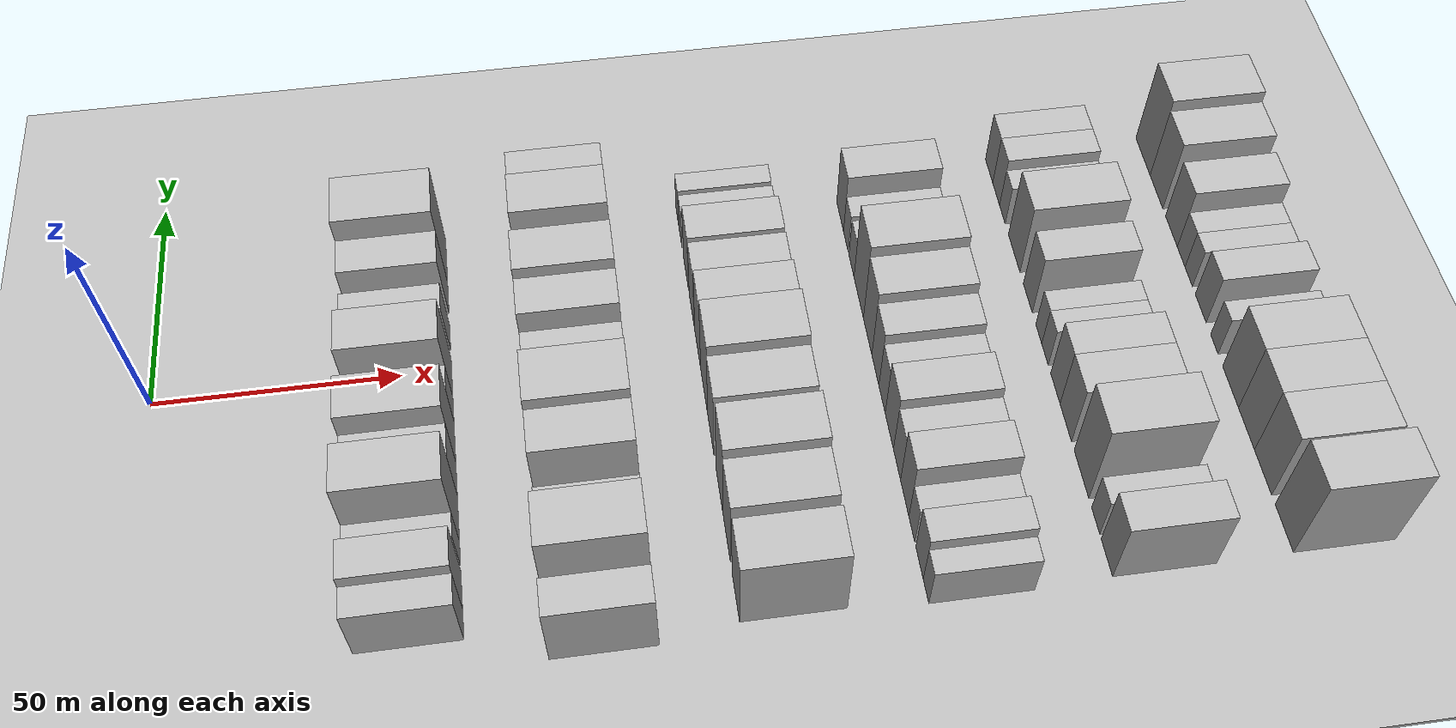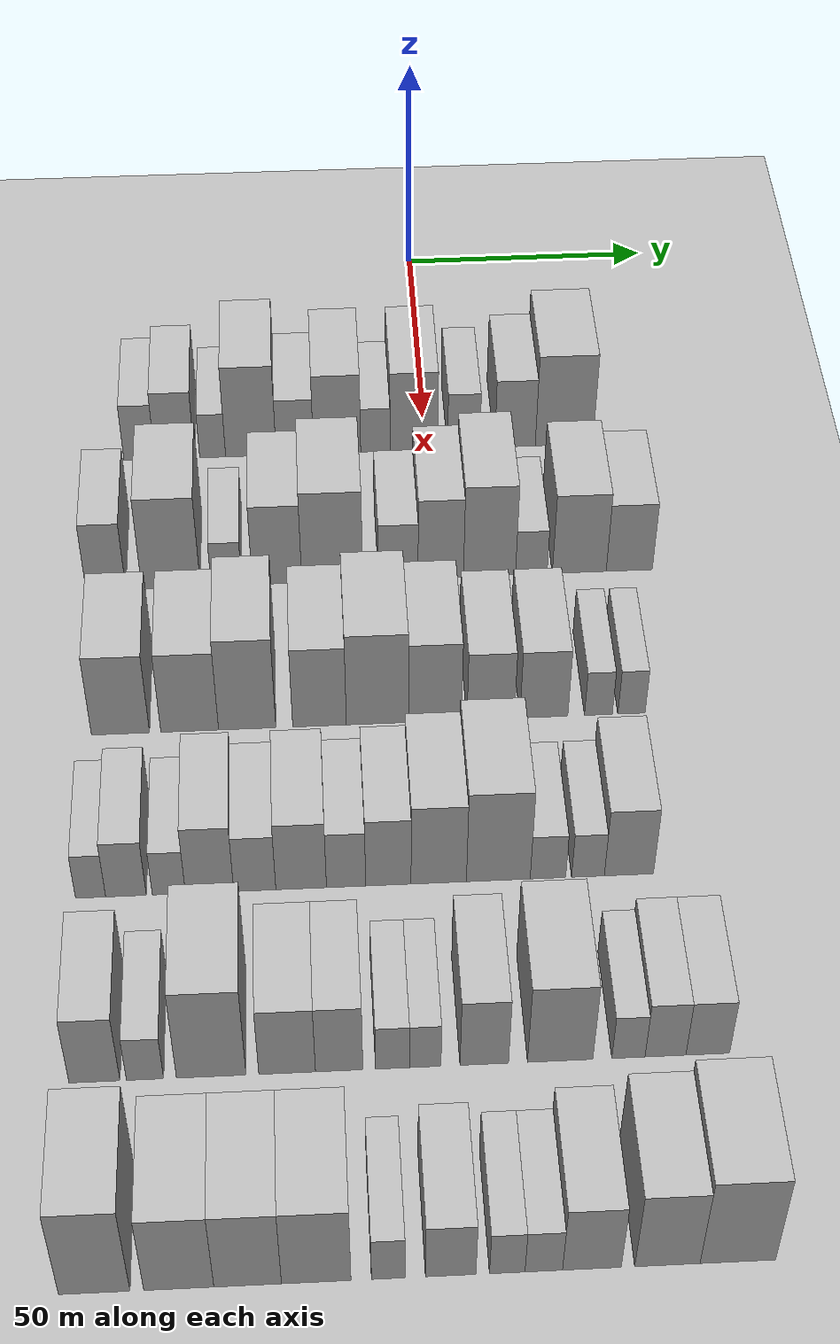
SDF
<sdf version="1.6">
 <world name="default">
  <include><name>ground_plane_1</name><uri>model://HANNAS_ground_plane</uri></include>
  <include>
   <name>ground_plane_2</name>
   <uri>model://HANNAS_ground_plane</uri>
   <pose>100 0 0  0 0 0</pose>
  </include>
  <model name="building_57">
   <static>1</static>
   <pose>50.0000 -56.8414 0 0.000000 0.000000 0.000000</pose>
   <link name="link">
    <pose>0 0 7.50 0 0 0</pose>
    <collision name="collision"><geometry><box><size>20.0000 6.1322 15.0000</size></box></geometry></collision>
    <visual name="visual">
     <cast_shadows>0</cast_shadows>
     <geometry><box><size>20.0000 6.1322 15.0000</size></box></geometry>
     <material>
      <script>
       <uri>model://HANNAS_wall/materials/scripts</uri>
       <uri>model://HANNAS_wall/materials/textures</uri>
       <name>vrc/HANNAS_wall</name>
      </script>
     </material>
    </visual>
   </link>
  </model>
  <model name="building_58">
   <static>1</static>
   <pose>50.0000 -49.8382 0 0.000000 0.000000 0.000000</pose>
   <link name="link">
    <pose>0 0 9.00 0 0 0</pose>
    <collision name="collision"><geometry><box><size>20.0000 7.8742 18.0000</size></box></geometry></collision>
    <visual name="visual">
     <cast_shadows>0</cast_shadows>
     <geometry><box><size>20.0000 7.8742 18.0000</size></box></geometry>
     <material>
      <script>
       <uri>model://HANNAS_wall/materials/scripts</uri>
       <uri>model://HANNAS_wall/materials/textures</uri>
       <name>vrc/HANNAS_wall</name>
      </script>
     </material>
    </visual>
   </link>
  </model>
  <model name="building_59">
   <static>1</static>
   <pose>50.0000 -42.3249 0 0.000000 0.000000 0.000000</pose>
   <link name="link">
    <pose>0 0 6.00 0 0 0</pose>
    <collision name="collision"><geometry><box><size>20.0000 5.1525 12.0000</size></box></geometry></collision>
    <visual name="visual">
     <cast_shadows>0</cast_shadows>
     <geometry><box><size>20.0000 5.1525 12.0000</size></box></geometry>
     <material>
      <script>
       <uri>model://HANNAS_wall/materials/scripts</uri>
       <uri>model://HANNAS_wall/materials/textures</uri>
       <name>vrc/HANNAS_wall</name>
      </script>
     </material>
    </visual>
   </link>
  </model>
  <model name="building_60">
   <static>1</static>
   <pose>50.0000 -34.7320 0 0.000000 0.000000 0.000000</pose>
   <link name="link">
    <pose>0 0 12.00 0 0 0</pose>
    <collision name="collision"><geometry><box><size>20.0000 10.0334 24.0000</size></box></geometry></collision>
    <visual name="visual">
     <cast_shadows>0</cast_shadows>
     <geometry><box><size>20.0000 10.0334 24.0000</size></box></geometry>
     <material>
      <script>
       <uri>model://HANNAS_wall/materials/scripts</uri>
       <uri>model://HANNAS_wall/materials/textures</uri>
       <name>vrc/HANNAS_wall</name>
      </script>
     </material>
    </visual>
   </link>
  </model>
  <model name="building_61">
   <static>1</static>
   <pose>50.0000 -26.0058 0 0.000000 0.000000 0.000000</pose>
   <link name="link">
    <pose>0 0 7.50 0 0 0</pose>
    <collision name="collision"><geometry><box><size>20.0000 7.4190 15.0000</size></box></geometry></collision>
    <visual name="visual">
     <cast_shadows>0</cast_shadows>
     <geometry><box><size>20.0000 7.4190 15.0000</size></box></geometry>
     <material>
      <script>
       <uri>model://HANNAS_wall/materials/scripts</uri>
       <uri>model://HANNAS_wall/materials/textures</uri>
       <name>vrc/HANNAS_wall</name>
      </script>
     </material>
    </visual>
   </link>
  </model>
  <model name="building_62">
   <static>1</static>
   <pose>50.0000 -17.5947 0 0.000000 0.000000 0.000000</pose>
   <link name="link">
    <pose>0 0 10.50 0 0 0</pose>
    <collision name="collision"><geometry><box><size>20.0000 9.4032 21.0000</size></box></geometry></collision>
    <visual name="visual">
     <cast_shadows>0</cast_shadows>
     <geometry><box><size>20.0000 9.4032 21.0000</size></box></geometry>
     <material>
      <script>
       <uri>model://HANNAS_wall/materials/scripts</uri>
       <uri>model://HANNAS_wall/materials/textures</uri>
       <name>vrc/HANNAS_wall</name>
      </script>
     </material>
    </visual>
   </link>
  </model>
  <model name="building_63">
   <static>1</static>
   <pose>50.0000 -9.9566 0 0.000000 0.000000 0.000000</pose>
   <link name="link">
    <pose>0 0 6.00 0 0 0</pose>
    <collision name="collision"><geometry><box><size>20.0000 5.8728 12.0000</size></box></geometry></collision>
    <visual name="visual">
     <cast_shadows>0</cast_shadows>
     <geometry><box><size>20.0000 5.8728 12.0000</size></box></geometry>
     <material>
      <script>
       <uri>model://HANNAS_wall/materials/scripts</uri>
       <uri>model://HANNAS_wall/materials/textures</uri>
       <name>vrc/HANNAS_wall</name>
      </script>
     </material>
    </visual>
   </link>
  </model>
  <model name="building_64">
   <static>1</static>
   <pose>50.0000 -2.2937 0 0.000000 0.000000 0.000000</pose>
   <link name="link">
    <pose>0 0 10.50 0 0 0</pose>
    <collision name="collision"><geometry><box><size>20.0000 9.4531 21.0000</size></box></geometry></collision>
    <visual name="visual">
     <cast_shadows>0</cast_shadows>
     <geometry><box><size>20.0000 9.4531 21.0000</size></box></geometry>
     <material>
      <script>
       <uri>model://HANNAS_wall/materials/scripts</uri>
       <uri>model://HANNAS_wall/materials/textures</uri>
       <name>vrc/HANNAS_wall</name>
      </script>
     </material>
    </visual>
   </link>
  </model>
  <model name="building_65">
   <static>1</static>
   <pose>50.0000 7.6497 0 0.000000 0.000000 0.000000</pose>
   <link name="link">
    <pose>0 0 7.50 0 0 0</pose>
    <collision name="collision"><geometry><box><size>20.0000 6.4336 15.0000</size></box></geometry></collision>
    <visual name="visual">
     <cast_shadows>0</cast_shadows>
     <geometry><box><size>20.0000 6.4336 15.0000</size></box></geometry>
     <material>
      <script>
       <uri>model://HANNAS_wall/materials/scripts</uri>
       <uri>model://HANNAS_wall/materials/textures</uri>
       <name>vrc/HANNAS_wall</name>
      </script>
     </material>
    </visual>
   </link>
  </model>
  <model name="building_66">
   <static>1</static>
   <pose>50.0000 17.9216 0 0.000000 0.000000 0.000000</pose>
   <link name="link">
    <pose>0 0 9.00 0 0 0</pose>
    <collision name="collision"><geometry><box><size>20.0000 8.1102 18.0000</size></box></geometry></collision>
    <visual name="visual">
     <cast_shadows>0</cast_shadows>
     <geometry><box><size>20.0000 8.1102 18.0000</size></box></geometry>
     <material>
      <script>
       <uri>model://HANNAS_wall/materials/scripts</uri>
       <uri>model://HANNAS_wall/materials/textures</uri>
       <name>vrc/HANNAS_wall</name>
      </script>
     </material>
    </visual>
   </link>
  </model>
  <model name="building_67">
   <static>1</static>
   <pose>50.0000 27.7490 0 0.000000 0.000000 0.000000</pose>
   <link name="link">
    <pose>0 0 12.00 0 0 0</pose>
    <collision name="collision"><geometry><box><size>20.0000 11.5447 24.0000</size></box></geometry></collision>
    <visual name="visual">
     <cast_shadows>0</cast_shadows>
     <geometry><box><size>20.0000 11.5447 24.0000</size></box></geometry>
     <material>
      <script>
       <uri>model://HANNAS_wall/materials/scripts</uri>
       <uri>model://HANNAS_wall/materials/textures</uri>
       <name>vrc/HANNAS_wall</name>
      </script>
     </material>
    </visual>
   </link>
  </model>
  <model name="building_186">
   <static>1</static>
   <pose>85.0000 -62.1370 0 0.000000 0.000000 0.000000</pose>
   <link name="link">
    <pose>0 0 9.00 0 0 0</pose>
    <collision name="collision"><geometry><box><size>20.0000 7.4513 18.0000</size></box></geometry></collision>
    <visual name="visual">
     <cast_shadows>0</cast_shadows>
     <geometry><box><size>20.0000 7.4513 18.0000</size></box></geometry>
     <material>
      <script>
       <uri>model://HANNAS_wall/materials/scripts</uri>
       <uri>model://HANNAS_wall/materials/textures</uri>
       <name>vrc/HANNAS_wall</name>
      </script>
     </material>
    </visual>
   </link>
  </model>
  <model name="building_187">
   <static>1</static>
   <pose>85.0000 -49.9048 0 0.000000 0.000000 0.000000</pose>
   <link name="link">
    <pose>0 0 12.00 0 0 0</pose>
    <collision name="collision"><geometry><box><size>20.0000 11.0131 24.0000</size></box></geometry></collision>
    <visual name="visual">
     <cast_shadows>0</cast_shadows>
     <geometry><box><size>20.0000 11.0131 24.0000</size></box></geometry>
     <material>
      <script>
       <uri>model://HANNAS_wall/materials/scripts</uri>
       <uri>model://HANNAS_wall/materials/textures</uri>
       <name>vrc/HANNAS_wall</name>
      </script>
     </material>
    </visual>
   </link>
  </model>
  <model name="building_188">
   <static>1</static>
   <pose>85.0000 -39.5182 0 0.000000 0.000000 0.000000</pose>
   <link name="link">
    <pose>0 0 6.00 0 0 0</pose>
    <collision name="collision"><geometry><box><size>20.0000 5.7602 12.0000</size></box></geometry></collision>
    <visual name="visual">
     <cast_shadows>0</cast_shadows>
     <geometry><box><size>20.0000 5.7602 12.0000</size></box></geometry>
     <material>
      <script>
       <uri>model://HANNAS_wall/materials/scripts</uri>
       <uri>model://HANNAS_wall/materials/textures</uri>
       <name>vrc/HANNAS_wall</name>
      </script>
     </material>
    </visual>
   </link>
  </model>
  <model name="building_189">
   <static>1</static>
   <pose>85.0000 -29.9861 0 0.000000 0.000000 0.000000</pose>
   <link name="link">
    <pose>0 0 10.50 0 0 0</pose>
    <collision name="collision"><geometry><box><size>20.0000 9.3040 21.0000</size></box></geometry></collision>
    <visual name="visual">
     <cast_shadows>0</cast_shadows>
     <geometry><box><size>20.0000 9.3040 21.0000</size></box></geometry>
     <material>
      <script>
       <uri>model://HANNAS_wall/materials/scripts</uri>
       <uri>model://HANNAS_wall/materials/textures</uri>
       <name>vrc/HANNAS_wall</name>
      </script>
     </material>
    </visual>
   </link>
  </model>
  <model name="building_190">
   <static>1</static>
   <pose>85.0000 -19.5991 0 0.000000 0.000000 0.000000</pose>
   <link name="link">
    <pose>0 0 12.00 0 0 0</pose>
    <collision name="collision"><geometry><box><size>20.0000 11.4700 24.0000</size></box></geometry></collision>
    <visual name="visual">
     <cast_shadows>0</cast_shadows>
     <geometry><box><size>20.0000 11.4700 24.0000</size></box></geometry>
     <material>
      <script>
       <uri>model://HANNAS_wall/materials/scripts</uri>
       <uri>model://HANNAS_wall/materials/textures</uri>
       <name>vrc/HANNAS_wall</name>
      </script>
     </material>
    </visual>
   </link>
  </model>
  <model name="building_191">
   <static>1</static>
   <pose>85.0000 -7.1360 0 0.000000 0.000000 0.000000</pose>
   <link name="link">
    <pose>0 0 7.50 0 0 0</pose>
    <collision name="collision"><geometry><box><size>20.0000 7.4561 15.0000</size></box></geometry></collision>
    <visual name="visual">
     <cast_shadows>0</cast_shadows>
     <geometry><box><size>20.0000 7.4561 15.0000</size></box></geometry>
     <material>
      <script>
       <uri>model://HANNAS_wall/materials/scripts</uri>
       <uri>model://HANNAS_wall/materials/textures</uri>
       <name>vrc/HANNAS_wall</name>
      </script>
     </material>
    </visual>
   </link>
  </model>
  <model name="building_192">
   <static>1</static>
   <pose>85.0000 0.8854 0 0.000000 0.000000 0.000000</pose>
   <link name="link">
    <pose>0 0 10.50 0 0 0</pose>
    <collision name="collision"><geometry><box><size>20.0000 8.5868 21.0000</size></box></geometry></collision>
    <visual name="visual">
     <cast_shadows>0</cast_shadows>
     <geometry><box><size>20.0000 8.5868 21.0000</size></box></geometry>
     <material>
      <script>
       <uri>model://HANNAS_wall/materials/scripts</uri>
       <uri>model://HANNAS_wall/materials/textures</uri>
       <name>vrc/HANNAS_wall</name>
      </script>
     </material>
    </visual>
   </link>
  </model>
  <model name="building_193">
   <static>1</static>
   <pose>85.0000 10.1110 0 0.000000 0.000000 0.000000</pose>
   <link name="link">
    <pose>0 0 12.00 0 0 0</pose>
    <collision name="collision"><geometry><box><size>20.0000 9.8644 24.0000</size></box></geometry></collision>
    <visual name="visual">
     <cast_shadows>0</cast_shadows>
     <geometry><box><size>20.0000 9.8644 24.0000</size></box></geometry>
     <material>
      <script>
       <uri>model://HANNAS_wall/materials/scripts</uri>
       <uri>model://HANNAS_wall/materials/textures</uri>
       <name>vrc/HANNAS_wall</name>
      </script>
     </material>
    </visual>
   </link>
  </model>
  <model name="building_194">
   <static>1</static>
   <pose>85.0000 18.0427 0 0.000000 0.000000 0.000000</pose>
   <link name="link">
    <pose>0 0 6.00 0 0 0</pose>
    <collision name="collision"><geometry><box><size>20.0000 5.9991 12.0000</size></box></geometry></collision>
    <visual name="visual">
     <cast_shadows>0</cast_shadows>
     <geometry><box><size>20.0000 5.9991 12.0000</size></box></geometry>
     <material>
      <script>
       <uri>model://HANNAS_wall/materials/scripts</uri>
       <uri>model://HANNAS_wall/materials/textures</uri>
       <name>vrc/HANNAS_wall</name>
      </script>
     </material>
    </visual>
   </link>
  </model>
  <model name="building_195">
   <static>1</static>
   <pose>85.0000 27.1589 0 0.000000 0.000000 0.000000</pose>
   <link name="link">
    <pose>0 0 10.50 0 0 0</pose>
    <collision name="collision"><geometry><box><size>20.0000 10.2332 21.0000</size></box></geometry></collision>
    <visual name="visual">
     <cast_shadows>0</cast_shadows>
     <geometry><box><size>20.0000 10.2332 21.0000</size></box></geometry>
     <material>
      <script>
       <uri>model://HANNAS_wall/materials/scripts</uri>
       <uri>model://HANNAS_wall/materials/textures</uri>
       <name>vrc/HANNAS_wall</name>
      </script>
     </material>
    </visual>
   </link>
  </model>
  <model name="building_196">
   <static>1</static>
   <pose>85.0000 36.6626 0 0.000000 0.000000 0.000000</pose>
   <link name="link">
    <pose>0 0 9.00 0 0 0</pose>
    <collision name="collision"><geometry><box><size>20.0000 8.7741 18.0000</size></box></geometry></collision>
    <visual name="visual">
     <cast_shadows>0</cast_shadows>
     <geometry><box><size>20.0000 8.7741 18.0000</size></box></geometry>
     <material>
      <script>
       <uri>model://HANNAS_wall/materials/scripts</uri>
       <uri>model://HANNAS_wall/materials/textures</uri>
       <name>vrc/HANNAS_wall</name>
      </script>
     </material>
    </visual>
   </link>
  </model>
  <model name="building_314">
   <static>1</static>
   <pose>120.0000 -58.2057 0 0.000000 0.000000 0.000000</pose>
   <link name="link">
    <pose>0 0 10.50 0 0 0</pose>
    <collision name="collision"><geometry><box><size>20.0000 10.2750 21.0000</size></box></geometry></collision>
    <visual name="visual">
     <cast_shadows>0</cast_shadows>
     <geometry><box><size>20.0000 10.2750 21.0000</size></box></geometry>
     <material>
      <script>
       <uri>model://HANNAS_wall/materials/scripts</uri>
       <uri>model://HANNAS_wall/materials/textures</uri>
       <name>vrc/HANNAS_wall</name>
      </script>
     </material>
    </visual>
   </link>
  </model>
  <model name="building_315">
   <static>1</static>
   <pose>120.0000 -45.9486 0 0.000000 0.000000 0.000000</pose>
   <link name="link">
    <pose>0 0 10.50 0 0 0</pose>
    <collision name="collision"><geometry><box><size>20.0000 10.2391 21.0000</size></box></geometry></collision>
    <visual name="visual">
     <cast_shadows>0</cast_shadows>
     <geometry><box><size>20.0000 10.2391 21.0000</size></box></geometry>
     <material>
      <script>
       <uri>model://HANNAS_wall/materials/scripts</uri>
       <uri>model://HANNAS_wall/materials/textures</uri>
       <name>vrc/HANNAS_wall</name>
      </script>
     </material>
    </visual>
   </link>
  </model>
  <model name="building_316">
   <static>1</static>
   <pose>120.0000 -35.7430 0 0.000000 0.000000 0.000000</pose>
   <link name="link">
    <pose>0 0 12.00 0 0 0</pose>
    <collision name="collision"><geometry><box><size>20.0000 10.1720 24.0000</size></box></geometry></collision>
    <visual name="visual">
     <cast_shadows>0</cast_shadows>
     <geometry><box><size>20.0000 10.1720 24.0000</size></box></geometry>
     <material>
      <script>
       <uri>model://HANNAS_wall/materials/scripts</uri>
       <uri>model://HANNAS_wall/materials/textures</uri>
       <name>vrc/HANNAS_wall</name>
      </script>
     </material>
    </visual>
   </link>
  </model>
  <model name="building_317">
   <static>1</static>
   <pose>120.0000 -22.8842 0 0.000000 0.000000 0.000000</pose>
   <link name="link">
    <pose>0 0 10.50 0 0 0</pose>
    <collision name="collision"><geometry><box><size>20.0000 9.5457 21.0000</size></box></geometry></collision>
    <visual name="visual">
     <cast_shadows>0</cast_shadows>
     <geometry><box><size>20.0000 9.5457 21.0000</size></box></geometry>
     <material>
      <script>
       <uri>model://HANNAS_wall/materials/scripts</uri>
       <uri>model://HANNAS_wall/materials/textures</uri>
       <name>vrc/HANNAS_wall</name>
      </script>
     </material>
    </visual>
   </link>
  </model>
  <model name="building_318">
   <static>1</static>
   <pose>120.0000 -12.5802 0 0.000000 0.000000 0.000000</pose>
   <link name="link">
    <pose>0 0 12.00 0 0 0</pose>
    <collision name="collision"><geometry><box><size>20.0000 11.0624 24.0000</size></box></geometry></collision>
    <visual name="visual">
     <cast_shadows>0</cast_shadows>
     <geometry><box><size>20.0000 11.0624 24.0000</size></box></geometry>
     <material>
      <script>
       <uri>model://HANNAS_wall/materials/scripts</uri>
       <uri>model://HANNAS_wall/materials/textures</uri>
       <name>vrc/HANNAS_wall</name>
      </script>
     </material>
    </visual>
   </link>
  </model>
  <model name="building_319">
   <static>1</static>
   <pose>120.0000 -2.3240 0 0.000000 0.000000 0.000000</pose>
   <link name="link">
    <pose>0 0 10.50 0 0 0</pose>
    <collision name="collision"><geometry><box><size>20.0000 9.4500 21.0000</size></box></geometry></collision>
    <visual name="visual">
     <cast_shadows>0</cast_shadows>
     <geometry><box><size>20.0000 9.4500 21.0000</size></box></geometry>
     <material>
      <script>
       <uri>model://HANNAS_wall/materials/scripts</uri>
       <uri>model://HANNAS_wall/materials/textures</uri>
       <name>vrc/HANNAS_wall</name>
      </script>
     </material>
    </visual>
   </link>
  </model>
  <model name="building_320">
   <static>1</static>
   <pose>120.0000 7.6342 0 0.000000 0.000000 0.000000</pose>
   <link name="link">
    <pose>0 0 9.00 0 0 0</pose>
    <collision name="collision"><geometry><box><size>20.0000 8.4664 18.0000</size></box></geometry></collision>
    <visual name="visual">
     <cast_shadows>0</cast_shadows>
     <geometry><box><size>20.0000 8.4664 18.0000</size></box></geometry>
     <material>
      <script>
       <uri>model://HANNAS_wall/materials/scripts</uri>
       <uri>model://HANNAS_wall/materials/textures</uri>
       <name>vrc/HANNAS_wall</name>
      </script>
     </material>
    </visual>
   </link>
  </model>
  <model name="building_321">
   <static>1</static>
   <pose>120.0000 17.1572 0 0.000000 0.000000 0.000000</pose>
   <link name="link">
    <pose>0 0 9.00 0 0 0</pose>
    <collision name="collision"><geometry><box><size>20.0000 8.5796 18.0000</size></box></geometry></collision>
    <visual name="visual">
     <cast_shadows>0</cast_shadows>
     <geometry><box><size>20.0000 8.5796 18.0000</size></box></geometry>
     <material>
      <script>
       <uri>model://HANNAS_wall/materials/scripts</uri>
       <uri>model://HANNAS_wall/materials/textures</uri>
       <name>vrc/HANNAS_wall</name>
      </script>
     </material>
    </visual>
   </link>
  </model>
  <model name="building_322">
   <static>1</static>
   <pose>120.0000 26.9430 0 0.000000 0.000000 0.000000</pose>
   <link name="link">
    <pose>0 0 6.00 0 0 0</pose>
    <collision name="collision"><geometry><box><size>20.0000 4.9921 12.0000</size></box></geometry></collision>
    <visual name="visual">
     <cast_shadows>0</cast_shadows>
     <geometry><box><size>20.0000 4.9921 12.0000</size></box></geometry>
     <material>
      <script>
       <uri>model://HANNAS_wall/materials/scripts</uri>
       <uri>model://HANNAS_wall/materials/textures</uri>
       <name>vrc/HANNAS_wall</name>
      </script>
     </material>
    </visual>
   </link>
  </model>
  <model name="building_323">
   <static>1</static>
   <pose>120.0000 32.8823 0 0.000000 0.000000 0.000000</pose>
   <link name="link">
    <pose>0 0 6.00 0 0 0</pose>
    <collision name="collision"><geometry><box><size>20.0000 4.8865 12.0000</size></box></geometry></collision>
    <visual name="visual">
     <cast_shadows>0</cast_shadows>
     <geometry><box><size>20.0000 4.8865 12.0000</size></box></geometry>
     <material>
      <script>
       <uri>model://HANNAS_wall/materials/scripts</uri>
       <uri>model://HANNAS_wall/materials/textures</uri>
       <name>vrc/HANNAS_wall</name>
      </script>
     </material>
    </visual>
   </link>
  </model>
  <model name="building_441">
   <static>1</static>
   <pose>155.0000 -61.9815 0 0.000000 0.000000 0.000000</pose>
   <link name="link">
    <pose>0 0 6.00 0 0 0</pose>
    <collision name="collision"><geometry><box><size>20.0000 5.0101 12.0000</size></box></geometry></collision>
    <visual name="visual">
     <cast_shadows>0</cast_shadows>
     <geometry><box><size>20.0000 5.0101 12.0000</size></box></geometry>
     <material>
      <script>
       <uri>model://HANNAS_wall/materials/scripts</uri>
       <uri>model://HANNAS_wall/materials/textures</uri>
       <name>vrc/HANNAS_wall</name>
      </script>
     </material>
    </visual>
   </link>
  </model>
  <model name="building_442">
   <static>1</static>
   <pose>155.0000 -56.0920 0 0.000000 0.000000 0.000000</pose>
   <link name="link">
    <pose>0 0 7.50 0 0 0</pose>
    <collision name="collision"><geometry><box><size>20.0000 6.7689 15.0000</size></box></geometry></collision>
    <visual name="visual">
     <cast_shadows>0</cast_shadows>
     <geometry><box><size>20.0000 6.7689 15.0000</size></box></geometry>
     <material>
      <script>
       <uri>model://HANNAS_wall/materials/scripts</uri>
       <uri>model://HANNAS_wall/materials/textures</uri>
       <name>vrc/HANNAS_wall</name>
      </script>
     </material>
    </visual>
   </link>
  </model>
  <model name="building_443">
   <static>1</static>
   <pose>155.0000 -48.9469 0 0.000000 0.000000 0.000000</pose>
   <link name="link">
    <pose>0 0 6.00 0 0 0</pose>
    <collision name="collision"><geometry><box><size>20.0000 5.5213 12.0000</size></box></geometry></collision>
    <visual name="visual">
     <cast_shadows>0</cast_shadows>
     <geometry><box><size>20.0000 5.5213 12.0000</size></box></geometry>
     <material>
      <script>
       <uri>model://HANNAS_wall/materials/scripts</uri>
       <uri>model://HANNAS_wall/materials/textures</uri>
       <name>vrc/HANNAS_wall</name>
      </script>
     </material>
    </visual>
   </link>
  </model>
  <model name="building_444">
   <static>1</static>
   <pose>155.0000 -42.1553 0 0.000000 0.000000 0.000000</pose>
   <link name="link">
    <pose>0 0 9.00 0 0 0</pose>
    <collision name="collision"><geometry><box><size>20.0000 8.0619 18.0000</size></box></geometry></collision>
    <visual name="visual">
     <cast_shadows>0</cast_shadows>
     <geometry><box><size>20.0000 8.0619 18.0000</size></box></geometry>
     <material>
      <script>
       <uri>model://HANNAS_wall/materials/scripts</uri>
       <uri>model://HANNAS_wall/materials/textures</uri>
       <name>vrc/HANNAS_wall</name>
      </script>
     </material>
    </visual>
   </link>
  </model>
  <model name="building_445">
   <static>1</static>
   <pose>155.0000 -34.6152 0 0.000000 0.000000 0.000000</pose>
   <link name="link">
    <pose>0 0 7.50 0 0 0</pose>
    <collision name="collision"><geometry><box><size>20.0000 7.0183 15.0000</size></box></geometry></collision>
    <visual name="visual">
     <cast_shadows>0</cast_shadows>
     <geometry><box><size>20.0000 7.0183 15.0000</size></box></geometry>
     <material>
      <script>
       <uri>model://HANNAS_wall/materials/scripts</uri>
       <uri>model://HANNAS_wall/materials/textures</uri>
       <name>vrc/HANNAS_wall</name>
      </script>
     </material>
    </visual>
   </link>
  </model>
  <model name="building_446">
   <static>1</static>
   <pose>155.0000 -26.8701 0 0.000000 0.000000 0.000000</pose>
   <link name="link">
    <pose>0 0 9.00 0 0 0</pose>
    <collision name="collision"><geometry><box><size>20.0000 8.4721 18.0000</size></box></geometry></collision>
    <visual name="visual">
     <cast_shadows>0</cast_shadows>
     <geometry><box><size>20.0000 8.4721 18.0000</size></box></geometry>
     <material>
      <script>
       <uri>model://HANNAS_wall/materials/scripts</uri>
       <uri>model://HANNAS_wall/materials/textures</uri>
       <name>vrc/HANNAS_wall</name>
      </script>
     </material>
    </visual>
   </link>
  </model>
  <model name="building_447">
   <static>1</static>
   <pose>155.0000 -19.3489 0 0.000000 0.000000 0.000000</pose>
   <link name="link">
    <pose>0 0 7.50 0 0 0</pose>
    <collision name="collision"><geometry><box><size>20.0000 6.5703 15.0000</size></box></geometry></collision>
    <visual name="visual">
     <cast_shadows>0</cast_shadows>
     <geometry><box><size>20.0000 6.5703 15.0000</size></box></geometry>
     <material>
      <script>
       <uri>model://HANNAS_wall/materials/scripts</uri>
       <uri>model://HANNAS_wall/materials/textures</uri>
       <name>vrc/HANNAS_wall</name>
      </script>
     </material>
    </visual>
   </link>
  </model>
  <model name="building_448">
   <static>1</static>
   <pose>155.0000 -12.2602 0 0.000000 0.000000 0.000000</pose>
   <link name="link">
    <pose>0 0 9.00 0 0 0</pose>
    <collision name="collision"><geometry><box><size>20.0000 7.6070 18.0000</size></box></geometry></collision>
    <visual name="visual">
     <cast_shadows>0</cast_shadows>
     <geometry><box><size>20.0000 7.6070 18.0000</size></box></geometry>
     <material>
      <script>
       <uri>model://HANNAS_wall/materials/scripts</uri>
       <uri>model://HANNAS_wall/materials/textures</uri>
       <name>vrc/HANNAS_wall</name>
      </script>
     </material>
    </visual>
   </link>
  </model>
  <model name="building_449">
   <static>1</static>
   <pose>155.0000 -3.8066 0 0.000000 0.000000 0.000000</pose>
   <link name="link">
    <pose>0 0 10.50 0 0 0</pose>
    <collision name="collision"><geometry><box><size>20.0000 9.3002 21.0000</size></box></geometry></collision>
    <visual name="visual">
     <cast_shadows>0</cast_shadows>
     <geometry><box><size>20.0000 9.3002 21.0000</size></box></geometry>
     <material>
      <script>
       <uri>model://HANNAS_wall/materials/scripts</uri>
       <uri>model://HANNAS_wall/materials/textures</uri>
       <name>vrc/HANNAS_wall</name>
      </script>
     </material>
    </visual>
   </link>
  </model>
  <model name="building_450">
   <static>1</static>
   <pose>155.0000 6.2107 0 0.000000 0.000000 0.000000</pose>
   <link name="link">
    <pose>0 0 12.00 0 0 0</pose>
    <collision name="collision"><geometry><box><size>20.0000 10.7344 24.0000</size></box></geometry></collision>
    <visual name="visual">
     <cast_shadows>0</cast_shadows>
     <geometry><box><size>20.0000 10.7344 24.0000</size></box></geometry>
     <material>
      <script>
       <uri>model://HANNAS_wall/materials/scripts</uri>
       <uri>model://HANNAS_wall/materials/textures</uri>
       <name>vrc/HANNAS_wall</name>
      </script>
     </material>
    </visual>
   </link>
  </model>
  <model name="building_451">
   <static>1</static>
   <pose>155.0000 14.5689 0 0.000000 0.000000 0.000000</pose>
   <link name="link">
    <pose>0 0 6.00 0 0 0</pose>
    <collision name="collision"><geometry><box><size>20.0000 5.9820 12.0000</size></box></geometry></collision>
    <visual name="visual">
     <cast_shadows>0</cast_shadows>
     <geometry><box><size>20.0000 5.9820 12.0000</size></box></geometry>
     <material>
      <script>
       <uri>model://HANNAS_wall/materials/scripts</uri>
       <uri>model://HANNAS_wall/materials/textures</uri>
       <name>vrc/HANNAS_wall</name>
      </script>
     </material>
    </visual>
   </link>
  </model>
  <model name="building_452">
   <static>1</static>
   <pose>155.0000 21.3207 0 0.000000 0.000000 0.000000</pose>
   <link name="link">
    <pose>0 0 6.00 0 0 0</pose>
    <collision name="collision"><geometry><box><size>20.0000 5.5216 12.0000</size></box></geometry></collision>
    <visual name="visual">
     <cast_shadows>0</cast_shadows>
     <geometry><box><size>20.0000 5.5216 12.0000</size></box></geometry>
     <material>
      <script>
       <uri>model://HANNAS_wall/materials/scripts</uri>
       <uri>model://HANNAS_wall/materials/textures</uri>
       <name>vrc/HANNAS_wall</name>
      </script>
     </material>
    </visual>
   </link>
  </model>
  <model name="building_453">
   <static>1</static>
   <pose>155.0000 28.2293 0 0.000000 0.000000 0.000000</pose>
   <link name="link">
    <pose>0 0 9.00 0 0 0</pose>
    <collision name="collision"><geometry><box><size>20.0000 8.2956 18.0000</size></box></geometry></collision>
    <visual name="visual">
     <cast_shadows>0</cast_shadows>
     <geometry><box><size>20.0000 8.2956 18.0000</size></box></geometry>
     <material>
      <script>
       <uri>model://HANNAS_wall/materials/scripts</uri>
       <uri>model://HANNAS_wall/materials/textures</uri>
       <name>vrc/HANNAS_wall</name>
      </script>
     </material>
    </visual>
   </link>
  </model>
  <model name="building_561">
   <static>1</static>
   <pose>190.0000 -59.8627 0 0.000000 0.000000 0.000000</pose>
   <link name="link">
    <pose>0 0 9.00 0 0 0</pose>
    <collision name="collision"><geometry><box><size>20.0000 7.9392 18.0000</size></box></geometry></collision>
    <visual name="visual">
     <cast_shadows>0</cast_shadows>
     <geometry><box><size>20.0000 7.9392 18.0000</size></box></geometry>
     <material>
      <script>
       <uri>model://HANNAS_wall/materials/scripts</uri>
       <uri>model://HANNAS_wall/materials/textures</uri>
       <name>vrc/HANNAS_wall</name>
      </script>
     </material>
    </visual>
   </link>
  </model>
  <model name="building_562">
   <static>1</static>
   <pose>190.0000 -51.9901 0 0.000000 0.000000 0.000000</pose>
   <link name="link">
    <pose>0 0 6.00 0 0 0</pose>
    <collision name="collision"><geometry><box><size>20.0000 5.8060 12.0000</size></box></geometry></collision>
    <visual name="visual">
     <cast_shadows>0</cast_shadows>
     <geometry><box><size>20.0000 5.8060 12.0000</size></box></geometry>
     <material>
      <script>
       <uri>model://HANNAS_wall/materials/scripts</uri>
       <uri>model://HANNAS_wall/materials/textures</uri>
       <name>vrc/HANNAS_wall</name>
      </script>
     </material>
    </visual>
   </link>
  </model>
  <model name="building_563">
   <static>1</static>
   <pose>190.0000 -41.6475 0 0.000000 0.000000 0.000000</pose>
   <link name="link">
    <pose>0 0 12.00 0 0 0</pose>
    <collision name="collision"><geometry><box><size>20.0000 10.8793 24.0000</size></box></geometry></collision>
    <visual name="visual">
     <cast_shadows>0</cast_shadows>
     <geometry><box><size>20.0000 10.8793 24.0000</size></box></geometry>
     <material>
      <script>
       <uri>model://HANNAS_wall/materials/scripts</uri>
       <uri>model://HANNAS_wall/materials/textures</uri>
       <name>vrc/HANNAS_wall</name>
      </script>
     </material>
    </visual>
   </link>
  </model>
  <model name="building_564">
   <static>1</static>
   <pose>190.0000 -29.7698 0 0.000000 0.000000 0.000000</pose>
   <link name="link">
    <pose>0 0 9.00 0 0 0</pose>
    <collision name="collision"><geometry><box><size>20.0000 8.8760 18.0000</size></box></geometry></collision>
    <visual name="visual">
     <cast_shadows>0</cast_shadows>
     <geometry><box><size>20.0000 8.8760 18.0000</size></box></geometry>
     <material>
      <script>
       <uri>model://HANNAS_wall/materials/scripts</uri>
       <uri>model://HANNAS_wall/materials/textures</uri>
       <name>vrc/HANNAS_wall</name>
      </script>
     </material>
    </visual>
   </link>
  </model>
  <model name="building_565">
   <static>1</static>
   <pose>190.0000 -21.6152 0 0.000000 0.000000 0.000000</pose>
   <link name="link">
    <pose>0 0 9.00 0 0 0</pose>
    <collision name="collision"><geometry><box><size>20.0000 7.4332 18.0000</size></box></geometry></collision>
    <visual name="visual">
     <cast_shadows>0</cast_shadows>
     <geometry><box><size>20.0000 7.4332 18.0000</size></box></geometry>
     <material>
      <script>
       <uri>model://HANNAS_wall/materials/scripts</uri>
       <uri>model://HANNAS_wall/materials/textures</uri>
       <name>vrc/HANNAS_wall</name>
      </script>
     </material>
    </visual>
   </link>
  </model>
  <model name="building_566">
   <static>1</static>
   <pose>190.0000 -13.2290 0 0.000000 0.000000 0.000000</pose>
   <link name="link">
    <pose>0 0 6.00 0 0 0</pose>
    <collision name="collision"><geometry><box><size>20.0000 5.3394 12.0000</size></box></geometry></collision>
    <visual name="visual">
     <cast_shadows>0</cast_shadows>
     <geometry><box><size>20.0000 5.3394 12.0000</size></box></geometry>
     <material>
      <script>
       <uri>model://HANNAS_wall/materials/scripts</uri>
       <uri>model://HANNAS_wall/materials/textures</uri>
       <name>vrc/HANNAS_wall</name>
      </script>
     </material>
    </visual>
   </link>
  </model>
  <model name="building_567">
   <static>1</static>
   <pose>190.0000 -8.0870 0 0.000000 0.000000 0.000000</pose>
   <link name="link">
    <pose>0 0 6.00 0 0 0</pose>
    <collision name="collision"><geometry><box><size>20.0000 4.9446 12.0000</size></box></geometry></collision>
    <visual name="visual">
     <cast_shadows>0</cast_shadows>
     <geometry><box><size>20.0000 4.9446 12.0000</size></box></geometry>
     <material>
      <script>
       <uri>model://HANNAS_wall/materials/scripts</uri>
       <uri>model://HANNAS_wall/materials/textures</uri>
       <name>vrc/HANNAS_wall</name>
      </script>
     </material>
    </visual>
   </link>
  </model>
  <model name="building_568">
   <static>1</static>
   <pose>190.0000 1.2051 0 0.000000 0.000000 0.000000</pose>
   <link name="link">
    <pose>0 0 9.00 0 0 0</pose>
    <collision name="collision"><geometry><box><size>20.0000 7.6396 18.0000</size></box></geometry></collision>
    <visual name="visual">
     <cast_shadows>0</cast_shadows>
     <geometry><box><size>20.0000 7.6396 18.0000</size></box></geometry>
     <material>
      <script>
       <uri>model://HANNAS_wall/materials/scripts</uri>
       <uri>model://HANNAS_wall/materials/textures</uri>
       <name>vrc/HANNAS_wall</name>
      </script>
     </material>
    </visual>
   </link>
  </model>
  <model name="building_569">
   <static>1</static>
   <pose>190.0000 13.1903 0 0.000000 0.000000 0.000000</pose>
   <link name="link">
    <pose>0 0 10.50 0 0 0</pose>
    <collision name="collision"><geometry><box><size>20.0000 10.3309 21.0000</size></box></geometry></collision>
    <visual name="visual">
     <cast_shadows>0</cast_shadows>
     <geometry><box><size>20.0000 10.3309 21.0000</size></box></geometry>
     <material>
      <script>
       <uri>model://HANNAS_wall/materials/scripts</uri>
       <uri>model://HANNAS_wall/materials/textures</uri>
       <name>vrc/HANNAS_wall</name>
      </script>
     </material>
    </visual>
   </link>
  </model>
  <model name="building_570">
   <static>1</static>
   <pose>190.0000 23.9827 0 0.000000 0.000000 0.000000</pose>
   <link name="link">
    <pose>0 0 6.00 0 0 0</pose>
    <collision name="collision"><geometry><box><size>20.0000 5.2538 12.0000</size></box></geometry></collision>
    <visual name="visual">
     <cast_shadows>0</cast_shadows>
     <geometry><box><size>20.0000 5.2538 12.0000</size></box></geometry>
     <material>
      <script>
       <uri>model://HANNAS_wall/materials/scripts</uri>
       <uri>model://HANNAS_wall/materials/textures</uri>
       <name>vrc/HANNAS_wall</name>
      </script>
     </material>
    </visual>
   </link>
  </model>
  <model name="building_571">
   <static>1</static>
   <pose>190.0000 29.8528 0 0.000000 0.000000 0.000000</pose>
   <link name="link">
    <pose>0 0 7.50 0 0 0</pose>
    <collision name="collision"><geometry><box><size>20.0000 6.4864 15.0000</size></box></geometry></collision>
    <visual name="visual">
     <cast_shadows>0</cast_shadows>
     <geometry><box><size>20.0000 6.4864 15.0000</size></box></geometry>
     <material>
      <script>
       <uri>model://HANNAS_wall/materials/scripts</uri>
       <uri>model://HANNAS_wall/materials/textures</uri>
       <name>vrc/HANNAS_wall</name>
      </script>
     </material>
    </visual>
   </link>
  </model>
  <model name="building_572">
   <static>1</static>
   <pose>190.0000 36.5645 0 0.000000 0.000000 0.000000</pose>
   <link name="link">
    <pose>0 0 7.50 0 0 0</pose>
    <collision name="collision"><geometry><box><size>20.0000 6.9370 15.0000</size></box></geometry></collision>
    <visual name="visual">
     <cast_shadows>0</cast_shadows>
     <geometry><box><size>20.0000 6.9370 15.0000</size></box></geometry>
     <material>
      <script>
       <uri>model://HANNAS_wall/materials/scripts</uri>
       <uri>model://HANNAS_wall/materials/textures</uri>
       <name>vrc/HANNAS_wall</name>
      </script>
     </material>
    </visual>
   </link>
  </model>
  <model name="building_689">
   <static>1</static>
   <pose>225.0000 -58.4345 0 0.000000 0.000000 0.000000</pose>
   <link name="link">
    <pose>0 0 12.00 0 0 0</pose>
    <collision name="collision"><geometry><box><size>20.0000 10.3867 24.0000</size></box></geometry></collision>
    <visual name="visual">
     <cast_shadows>0</cast_shadows>
     <geometry><box><size>20.0000 10.3867 24.0000</size></box></geometry>
     <material>
      <script>
       <uri>model://HANNAS_wall/materials/scripts</uri>
       <uri>model://HANNAS_wall/materials/textures</uri>
       <name>vrc/HANNAS_wall</name>
      </script>
     </material>
    </visual>
   </link>
  </model>
  <model name="building_690">
   <static>1</static>
   <pose>225.0000 -46.1362 0 0.000000 0.000000 0.000000</pose>
   <link name="link">
    <pose>0 0 10.50 0 0 0</pose>
    <collision name="collision"><geometry><box><size>20.0000 10.2099 21.0000</size></box></geometry></collision>
    <visual name="visual">
     <cast_shadows>0</cast_shadows>
     <geometry><box><size>20.0000 10.2099 21.0000</size></box></geometry>
     <material>
      <script>
       <uri>model://HANNAS_wall/materials/scripts</uri>
       <uri>model://HANNAS_wall/materials/textures</uri>
       <name>vrc/HANNAS_wall</name>
      </script>
     </material>
    </visual>
   </link>
  </model>
  <model name="building_691">
   <static>1</static>
   <pose>225.0000 -36.0965 0 0.000000 0.000000 0.000000</pose>
   <link name="link">
    <pose>0 0 10.50 0 0 0</pose>
    <collision name="collision"><geometry><box><size>20.0000 9.8695 21.0000</size></box></geometry></collision>
    <visual name="visual">
     <cast_shadows>0</cast_shadows>
     <geometry><box><size>20.0000 9.8695 21.0000</size></box></geometry>
     <material>
      <script>
       <uri>model://HANNAS_wall/materials/scripts</uri>
       <uri>model://HANNAS_wall/materials/textures</uri>
       <name>vrc/HANNAS_wall</name>
      </script>
     </material>
    </visual>
   </link>
  </model>
  <model name="building_692">
   <static>1</static>
   <pose>225.0000 -26.0779 0 0.000000 0.000000 0.000000</pose>
   <link name="link">
    <pose>0 0 10.50 0 0 0</pose>
    <collision name="collision"><geometry><box><size>20.0000 10.1675 21.0000</size></box></geometry></collision>
    <visual name="visual">
     <cast_shadows>0</cast_shadows>
     <geometry><box><size>20.0000 10.1675 21.0000</size></box></geometry>
     <material>
      <script>
       <uri>model://HANNAS_wall/materials/scripts</uri>
       <uri>model://HANNAS_wall/materials/textures</uri>
       <name>vrc/HANNAS_wall</name>
      </script>
     </material>
    </visual>
   </link>
  </model>
  <model name="building_693">
   <static>1</static>
   <pose>225.0000 -15.5332 0 0.000000 0.000000 0.000000</pose>
   <link name="link">
    <pose>0 0 6.00 0 0 0</pose>
    <collision name="collision"><geometry><box><size>20.0000 4.9218 12.0000</size></box></geometry></collision>
    <visual name="visual">
     <cast_shadows>0</cast_shadows>
     <geometry><box><size>20.0000 4.9218 12.0000</size></box></geometry>
     <material>
      <script>
       <uri>model://HANNAS_wall/materials/scripts</uri>
       <uri>model://HANNAS_wall/materials/textures</uri>
       <name>vrc/HANNAS_wall</name>
      </script>
     </material>
    </visual>
   </link>
  </model>
  <model name="building_694">
   <static>1</static>
   <pose>225.0000 -6.3701 0 0.000000 0.000000 0.000000</pose>
   <link name="link">
    <pose>0 0 7.50 0 0 0</pose>
    <collision name="collision"><geometry><box><size>20.0000 7.4045 15.0000</size></box></geometry></collision>
    <visual name="visual">
     <cast_shadows>0</cast_shadows>
     <geometry><box><size>20.0000 7.4045 15.0000</size></box></geometry>
     <material>
      <script>
       <uri>model://HANNAS_wall/materials/scripts</uri>
       <uri>model://HANNAS_wall/materials/textures</uri>
       <name>vrc/HANNAS_wall</name>
      </script>
     </material>
    </visual>
   </link>
  </model>
  <model name="building_695">
   <static>1</static>
   <pose>225.0000 1.9411 0 0.000000 0.000000 0.000000</pose>
   <link name="link">
    <pose>0 0 6.00 0 0 0</pose>
    <collision name="collision"><geometry><box><size>20.0000 5.2178 12.0000</size></box></geometry></collision>
    <visual name="visual">
     <cast_shadows>0</cast_shadows>
     <geometry><box><size>20.0000 5.2178 12.0000</size></box></geometry>
     <material>
      <script>
       <uri>model://HANNAS_wall/materials/scripts</uri>
       <uri>model://HANNAS_wall/materials/textures</uri>
       <name>vrc/HANNAS_wall</name>
      </script>
     </material>
    </visual>
   </link>
  </model>
  <model name="building_696">
   <static>1</static>
   <pose>225.0000 7.3150 0 0.000000 0.000000 0.000000</pose>
   <link name="link">
    <pose>0 0 6.00 0 0 0</pose>
    <collision name="collision"><geometry><box><size>20.0000 5.5300 12.0000</size></box></geometry></collision>
    <visual name="visual">
     <cast_shadows>0</cast_shadows>
     <geometry><box><size>20.0000 5.5300 12.0000</size></box></geometry>
     <material>
      <script>
       <uri>model://HANNAS_wall/materials/scripts</uri>
       <uri>model://HANNAS_wall/materials/textures</uri>
       <name>vrc/HANNAS_wall</name>
      </script>
     </material>
    </visual>
   </link>
  </model>
  <model name="building_697">
   <static>1</static>
   <pose>225.0000 14.4090 0 0.000000 0.000000 0.000000</pose>
   <link name="link">
    <pose>0 0 9.00 0 0 0</pose>
    <collision name="collision"><geometry><box><size>20.0000 8.6581 18.0000</size></box></geometry></collision>
    <visual name="visual">
     <cast_shadows>0</cast_shadows>
     <geometry><box><size>20.0000 8.6581 18.0000</size></box></geometry>
     <material>
      <script>
       <uri>model://HANNAS_wall/materials/scripts</uri>
       <uri>model://HANNAS_wall/materials/textures</uri>
       <name>vrc/HANNAS_wall</name>
      </script>
     </material>
    </visual>
   </link>
  </model>
  <model name="building_698">
   <static>1</static>
   <pose>225.0000 25.5688 0 0.000000 0.000000 0.000000</pose>
   <link name="link">
    <pose>0 0 10.50 0 0 0</pose>
    <collision name="collision"><geometry><box><size>20.0000 9.6615 21.0000</size></box></geometry></collision>
    <visual name="visual">
     <cast_shadows>0</cast_shadows>
     <geometry><box><size>20.0000 9.6615 21.0000</size></box></geometry>
     <material>
      <script>
       <uri>model://HANNAS_wall/materials/scripts</uri>
       <uri>model://HANNAS_wall/materials/textures</uri>
       <name>vrc/HANNAS_wall</name>
      </script>
     </material>
    </visual>
   </link>
  </model>
  <model name="building_699">
   <static>1</static>
   <pose>225.0000 35.9951 0 0.000000 0.000000 0.000000</pose>
   <link name="link">
    <pose>0 0 12.00 0 0 0</pose>
    <collision name="collision"><geometry><box><size>20.0000 11.1910 24.0000</size></box></geometry></collision>
    <visual name="visual">
     <cast_shadows>0</cast_shadows>
     <geometry><box><size>20.0000 11.1910 24.0000</size></box></geometry>
     <material>
      <script>
       <uri>model://HANNAS_wall/materials/scripts</uri>
       <uri>model://HANNAS_wall/materials/textures</uri>
       <name>vrc/HANNAS_wall</name>
      </script>
     </material>
    </visual>
   </link>
  </model>
 </world>
</sdf>
